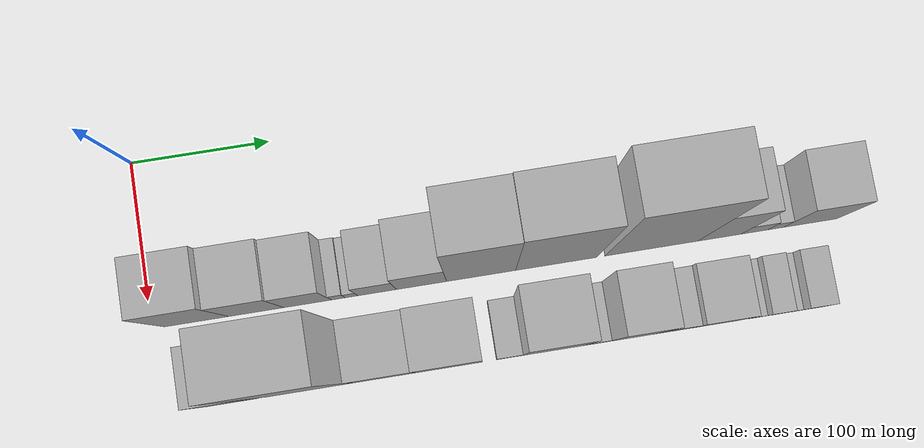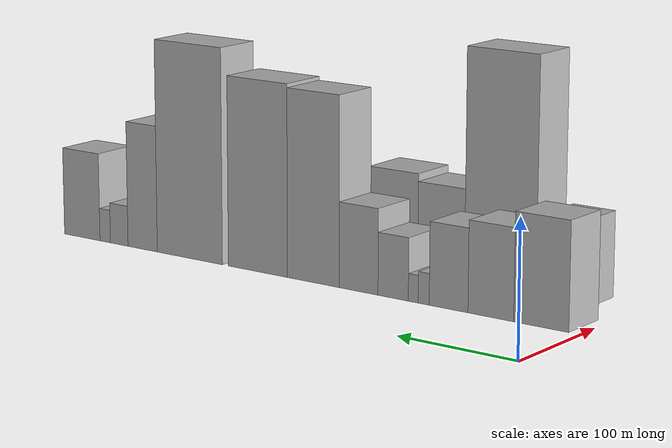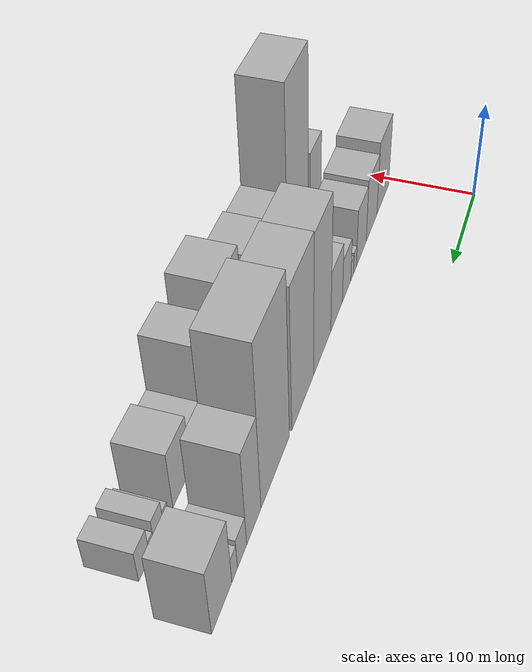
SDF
<sdf version="1.6">
 <world name="default">
  <model name="building_13">
   <static>1</static>
   <pose>100.0000 32.1512 0 0.000000 0.000000 0.000000</pose>
   <link name="link">
    <pose>0 0 40.50 0 0 0</pose>
    <collision name="collision"><geometry><box><size>40.0000 45.7778 81.0000</size></box></geometry></collision>
    <visual name="visual">
     <cast_shadows>0</cast_shadows>
     <geometry><box><size>40.0000 45.7778 81.0000</size></box></geometry>
     <material>
      <script>
       <uri>model://HANNAS_wall/materials/scripts</uri>
       <uri>model://HANNAS_wall/materials/textures</uri>
       <name>vrc/HANNAS_wall</name>
      </script>
     </material>
    </visual>
   </link>
  </model>
  <model name="building_14">
   <static>1</static>
   <pose>100.0000 74.6157 0 0.000000 0.000000 0.000000</pose>
   <link name="link">
    <pose>0 0 34.50 0 0 0</pose>
    <collision name="collision"><geometry><box><size>40.0000 39.1512 69.0000</size></box></geometry></collision>
    <visual name="visual">
     <cast_shadows>0</cast_shadows>
     <geometry><box><size>40.0000 39.1512 69.0000</size></box></geometry>
     <material>
      <script>
       <uri>model://HANNAS_wall/materials/scripts</uri>
       <uri>model://HANNAS_wall/materials/textures</uri>
       <name>vrc/HANNAS_wall</name>
      </script>
     </material>
    </visual>
   </link>
  </model>
  <model name="building_15">
   <static>1</static>
   <pose>100.0000 111.1428 0 0.000000 0.000000 0.000000</pose>
   <link name="link">
    <pose>0 0 31.50 0 0 0</pose>
    <collision name="collision"><geometry><box><size>40.0000 33.9030 63.0000</size></box></geometry></collision>
    <visual name="visual">
     <cast_shadows>0</cast_shadows>
     <geometry><box><size>40.0000 33.9030 63.0000</size></box></geometry>
     <material>
      <script>
       <uri>model://HANNAS_wall/materials/scripts</uri>
       <uri>model://HANNAS_wall/materials/textures</uri>
       <name>vrc/HANNAS_wall</name>
      </script>
     </material>
    </visual>
   </link>
  </model>
  <model name="building_16">
   <static>1</static>
   <pose>100.0000 132.9962 0 0.000000 0.000000 0.000000</pose>
   <link name="link">
    <pose>0 0 12.00 0 0 0</pose>
    <collision name="collision"><geometry><box><size>40.0000 9.8038 24.0000</size></box></geometry></collision>
    <visual name="visual">
     <cast_shadows>0</cast_shadows>
     <geometry><box><size>40.0000 9.8038 24.0000</size></box></geometry>
     <material>
      <script>
       <uri>model://HANNAS_wall/materials/scripts</uri>
       <uri>model://HANNAS_wall/materials/textures</uri>
       <name>vrc/HANNAS_wall</name>
      </script>
     </material>
    </visual>
   </link>
  </model>
  <model name="building_17">
   <static>1</static>
   <pose>100.0000 142.3267 0 0.000000 0.000000 0.000000</pose>
   <link name="link">
    <pose>0 0 10.50 0 0 0</pose>
    <collision name="collision"><geometry><box><size>40.0000 8.8571 21.0000</size></box></geometry></collision>
    <visual name="visual">
     <cast_shadows>0</cast_shadows>
     <geometry><box><size>40.0000 8.8571 21.0000</size></box></geometry>
     <material>
      <script>
       <uri>model://HANNAS_wall/materials/scripts</uri>
       <uri>model://HANNAS_wall/materials/textures</uri>
       <name>vrc/HANNAS_wall</name>
      </script>
     </material>
    </visual>
   </link>
  </model>
  <model name="building_18">
   <static>1</static>
   <pose>100.0000 160.5470 0 0.000000 0.000000 0.000000</pose>
   <link name="link">
    <pose>0 0 24.00 0 0 0</pose>
    <collision name="collision"><geometry><box><size>40.0000 27.5835 48.0000</size></box></geometry></collision>
    <visual name="visual">
     <cast_shadows>0</cast_shadows>
     <geometry><box><size>40.0000 27.5835 48.0000</size></box></geometry>
     <material>
      <script>
       <uri>model://HANNAS_wall/materials/scripts</uri>
       <uri>model://HANNAS_wall/materials/textures</uri>
       <name>vrc/HANNAS_wall</name>
      </script>
     </material>
    </visual>
   </link>
  </model>
  <model name="building_19">
   <static>1</static>
   <pose>100.0000 192.2544 0 0.000000 0.000000 0.000000</pose>
   <link name="link">
    <pose>0 0 33.00 0 0 0</pose>
    <collision name="collision"><geometry><box><size>40.0000 35.8312 66.0000</size></box></geometry></collision>
    <visual name="visual">
     <cast_shadows>0</cast_shadows>
     <geometry><box><size>40.0000 35.8312 66.0000</size></box></geometry>
     <material>
      <script>
       <uri>model://HANNAS_wall/materials/scripts</uri>
       <uri>model://HANNAS_wall/materials/textures</uri>
       <name>vrc/HANNAS_wall</name>
      </script>
     </material>
    </visual>
   </link>
  </model>
  <model name="building_20">
   <static>1</static>
   <pose>100.0000 234.7998 0 0.000000 0.000000 0.000000</pose>
   <link name="link">
    <pose>0 0 73.50 0 0 0</pose>
    <collision name="collision"><geometry><box><size>40.0000 49.2597 147.0000</size></box></geometry></collision>
    <visual name="visual">
     <cast_shadows>0</cast_shadows>
     <geometry><box><size>40.0000 49.2597 147.0000</size></box></geometry>
     <material>
      <script>
       <uri>model://HANNAS_wall/materials/scripts</uri>
       <uri>model://HANNAS_wall/materials/textures</uri>
       <name>vrc/HANNAS_wall</name>
      </script>
     </material>
    </visual>
   </link>
  </model>
  <model name="building_21">
   <static>1</static>
   <pose>100.0000 288.5176 0 0.000000 0.000000 0.000000</pose>
   <link name="link">
    <pose>0 0 75.00 0 0 0</pose>
    <collision name="collision"><geometry><box><size>40.0000 58.1758 150.0000</size></box></geometry></collision>
    <visual name="visual">
     <cast_shadows>0</cast_shadows>
     <geometry><box><size>40.0000 58.1758 150.0000</size></box></geometry>
     <material>
      <script>
       <uri>model://HANNAS_wall/materials/scripts</uri>
       <uri>model://HANNAS_wall/materials/textures</uri>
       <name>vrc/HANNAS_wall</name>
      </script>
     </material>
    </visual>
   </link>
  </model>
  <model name="building_22">
   <static>1</static>
   <pose>100.0000 357.1346 0 0.000000 0.000000 0.000000</pose>
   <link name="link">
    <pose>0 0 85.50 0 0 0</pose>
    <collision name="collision"><geometry><box><size>40.0000 67.0583 171.0000</size></box></geometry></collision>
    <visual name="visual">
     <cast_shadows>0</cast_shadows>
     <geometry><box><size>40.0000 67.0583 171.0000</size></box></geometry>
     <material>
      <script>
       <uri>model://HANNAS_wall/materials/scripts</uri>
       <uri>model://HANNAS_wall/materials/textures</uri>
       <name>vrc/HANNAS_wall</name>
      </script>
     </material>
    </visual>
   </link>
  </model>
  <model name="building_23">
   <static>1</static>
   <pose>100.0000 406.2230 0 0.000000 0.000000 0.000000</pose>
   <link name="link">
    <pose>0 0 51.00 0 0 0</pose>
    <collision name="collision"><geometry><box><size>40.0000 31.1185 102.0000</size></box></geometry></collision>
    <visual name="visual">
     <cast_shadows>0</cast_shadows>
     <geometry><box><size>40.0000 31.1185 102.0000</size></box></geometry>
     <material>
      <script>
       <uri>model://HANNAS_wall/materials/scripts</uri>
       <uri>model://HANNAS_wall/materials/textures</uri>
       <name>vrc/HANNAS_wall</name>
      </script>
     </material>
    </visual>
   </link>
  </model>
  <model name="building_24">
   <static>1</static>
   <pose>100.0000 431.2539 0 0.000000 0.000000 0.000000</pose>
   <link name="link">
    <pose>0 0 16.50 0 0 0</pose>
    <collision name="collision"><geometry><box><size>40.0000 18.9434 33.0000</size></box></geometry></collision>
    <visual name="visual">
     <cast_shadows>0</cast_shadows>
     <geometry><box><size>40.0000 18.9434 33.0000</size></box></geometry>
     <material>
      <script>
       <uri>model://HANNAS_wall/materials/scripts</uri>
       <uri>model://HANNAS_wall/materials/textures</uri>
       <name>vrc/HANNAS_wall</name>
      </script>
     </material>
    </visual>
   </link>
  </model>
  <model name="building_25">
   <static>1</static>
   <pose>100.0000 446.4016 0 0.000000 0.000000 0.000000</pose>
   <link name="link">
    <pose>0 0 13.50 0 0 0</pose>
    <collision name="collision"><geometry><box><size>40.0000 11.3519 27.0000</size></box></geometry></collision>
    <visual name="visual">
     <cast_shadows>0</cast_shadows>
     <geometry><box><size>40.0000 11.3519 27.0000</size></box></geometry>
     <material>
      <script>
       <uri>model://HANNAS_wall/materials/scripts</uri>
       <uri>model://HANNAS_wall/materials/textures</uri>
       <name>vrc/HANNAS_wall</name>
      </script>
     </material>
    </visual>
   </link>
  </model>
  <model name="building_26">
   <static>1</static>
   <pose>100.0000 471.6284 0 0.000000 0.000000 0.000000</pose>
   <link name="link">
    <pose>0 0 36.00 0 0 0</pose>
    <collision name="collision"><geometry><box><size>40.0000 39.1017 72.0000</size></box></geometry></collision>
    <visual name="visual">
     <cast_shadows>0</cast_shadows>
     <geometry><box><size>40.0000 39.1017 72.0000</size></box></geometry>
     <material>
      <script>
       <uri>model://HANNAS_wall/materials/scripts</uri>
       <uri>model://HANNAS_wall/materials/textures</uri>
       <name>vrc/HANNAS_wall</name>
      </script>
     </material>
    </visual>
   </link>
  </model>
  <model name="building_41">
   <static>1</static>
   <pose>160.0000 50.1400 0 0.000000 0.000000 0.000000</pose>
   <link name="link">
    <pose>0 0 33.00 0 0 0</pose>
    <collision name="collision"><geometry><box><size>40.0000 36.0991 66.0000</size></box></geometry></collision>
    <visual name="visual">
     <cast_shadows>0</cast_shadows>
     <geometry><box><size>40.0000 36.0991 66.0000</size></box></geometry>
     <material>
      <script>
       <uri>model://HANNAS_wall/materials/scripts</uri>
       <uri>model://HANNAS_wall/materials/textures</uri>
       <name>vrc/HANNAS_wall</name>
      </script>
     </material>
    </visual>
   </link>
  </model>
  <model name="building_42">
   <static>1</static>
   <pose>160.0000 105.8316 0 0.000000 0.000000 0.000000</pose>
   <link name="link">
    <pose>0 0 91.50 0 0 0</pose>
    <collision name="collision"><geometry><box><size>40.0000 63.2841 183.0000</size></box></geometry></collision>
    <visual name="visual">
     <cast_shadows>0</cast_shadows>
     <geometry><box><size>40.0000 63.2841 183.0000</size></box></geometry>
     <material>
      <script>
       <uri>model://HANNAS_wall/materials/scripts</uri>
       <uri>model://HANNAS_wall/materials/textures</uri>
       <name>vrc/HANNAS_wall</name>
      </script>
     </material>
    </visual>
   </link>
  </model>
  <model name="building_43">
   <static>1</static>
   <pose>160.0000 158.9096 0 0.000000 0.000000 0.000000</pose>
   <link name="link">
    <pose>0 0 37.50 0 0 0</pose>
    <collision name="collision"><geometry><box><size>40.0000 42.8721 75.0000</size></box></geometry></collision>
    <visual name="visual">
     <cast_shadows>0</cast_shadows>
     <geometry><box><size>40.0000 42.8721 75.0000</size></box></geometry>
     <material>
      <script>
       <uri>model://HANNAS_wall/materials/scripts</uri>
       <uri>model://HANNAS_wall/materials/textures</uri>
       <name>vrc/HANNAS_wall</name>
      </script>
     </material>
    </visual>
   </link>
  </model>
  <model name="building_44">
   <static>1</static>
   <pose>160.0000 203.1204 0 0.000000 0.000000 0.000000</pose>
   <link name="link">
    <pose>0 0 40.50 0 0 0</pose>
    <collision name="collision"><geometry><box><size>40.0000 45.5495 81.0000</size></box></geometry></collision>
    <visual name="visual">
     <cast_shadows>0</cast_shadows>
     <geometry><box><size>40.0000 45.5495 81.0000</size></box></geometry>
     <material>
      <script>
       <uri>model://HANNAS_wall/materials/scripts</uri>
       <uri>model://HANNAS_wall/materials/textures</uri>
       <name>vrc/HANNAS_wall</name>
      </script>
     </material>
    </visual>
   </link>
  </model>
  <model name="building_45">
   <static>1</static>
   <pose>160.0000 244.8212 0 0.000000 0.000000 0.000000</pose>
   <link name="link">
    <pose>0 0 15.00 0 0 0</pose>
    <collision name="collision"><geometry><box><size>40.0000 17.8520 30.0000</size></box></geometry></collision>
    <visual name="visual">
     <cast_shadows>0</cast_shadows>
     <geometry><box><size>40.0000 17.8520 30.0000</size></box></geometry>
     <material>
      <script>
       <uri>model://HANNAS_wall/materials/scripts</uri>
       <uri>model://HANNAS_wall/materials/textures</uri>
       <name>vrc/HANNAS_wall</name>
      </script>
     </material>
    </visual>
   </link>
  </model>
  <model name="building_46">
   <static>1</static>
   <pose>160.0000 275.0824 0 0.000000 0.000000 0.000000</pose>
   <link name="link">
    <pose>0 0 58.50 0 0 0</pose>
    <collision name="collision"><geometry><box><size>40.0000 42.6705 117.0000</size></box></geometry></collision>
    <visual name="visual">
     <cast_shadows>0</cast_shadows>
     <geometry><box><size>40.0000 42.6705 117.0000</size></box></geometry>
     <material>
      <script>
       <uri>model://HANNAS_wall/materials/scripts</uri>
       <uri>model://HANNAS_wall/materials/textures</uri>
       <name>vrc/HANNAS_wall</name>
      </script>
     </material>
    </visual>
   </link>
  </model>
  <model name="building_47">
   <static>1</static>
   <pose>160.0000 305.1480 0 0.000000 0.000000 0.000000</pose>
   <link name="link">
    <pose>0 0 16.50 0 0 0</pose>
    <collision name="collision"><geometry><box><size>40.0000 17.4606 33.0000</size></box></geometry></collision>
    <visual name="visual">
     <cast_shadows>0</cast_shadows>
     <geometry><box><size>40.0000 17.4606 33.0000</size></box></geometry>
     <material>
      <script>
       <uri>model://HANNAS_wall/materials/scripts</uri>
       <uri>model://HANNAS_wall/materials/textures</uri>
       <name>vrc/HANNAS_wall</name>
      </script>
     </material>
    </visual>
   </link>
  </model>
  <model name="building_48">
   <static>1</static>
   <pose>160.0000 330.9484 0 0.000000 0.000000 0.000000</pose>
   <link name="link">
    <pose>0 0 52.50 0 0 0</pose>
    <collision name="collision"><geometry><box><size>40.0000 34.1402 105.0000</size></box></geometry></collision>
    <visual name="visual">
     <cast_shadows>0</cast_shadows>
     <geometry><box><size>40.0000 34.1402 105.0000</size></box></geometry>
     <material>
      <script>
       <uri>model://HANNAS_wall/materials/scripts</uri>
       <uri>model://HANNAS_wall/materials/textures</uri>
       <name>vrc/HANNAS_wall</name>
      </script>
     </material>
    </visual>
   </link>
  </model>
  <model name="building_49">
   <static>1</static>
   <pose>160.0000 360.1881 0 0.000000 0.000000 0.000000</pose>
   <link name="link">
    <pose>0 0 24.00 0 0 0</pose>
    <collision name="collision"><geometry><box><size>40.0000 24.3393 48.0000</size></box></geometry></collision>
    <visual name="visual">
     <cast_shadows>0</cast_shadows>
     <geometry><box><size>40.0000 24.3393 48.0000</size></box></geometry>
     <material>
      <script>
       <uri>model://HANNAS_wall/materials/scripts</uri>
       <uri>model://HANNAS_wall/materials/textures</uri>
       <name>vrc/HANNAS_wall</name>
      </script>
     </material>
    </visual>
   </link>
  </model>
  <model name="building_50">
   <static>1</static>
   <pose>160.0000 389.9741 0 0.000000 0.000000 0.000000</pose>
   <link name="link">
    <pose>0 0 30.00 0 0 0</pose>
    <collision name="collision"><geometry><box><size>40.0000 35.2327 60.0000</size></box></geometry></collision>
    <visual name="visual">
     <cast_shadows>0</cast_shadows>
     <geometry><box><size>40.0000 35.2327 60.0000</size></box></geometry>
     <material>
      <script>
       <uri>model://HANNAS_wall/materials/scripts</uri>
       <uri>model://HANNAS_wall/materials/textures</uri>
       <name>vrc/HANNAS_wall</name>
      </script>
     </material>
    </visual>
   </link>
  </model>
  <model name="building_51">
   <static>1</static>
   <pose>160.0000 420.0163 0 0.000000 0.000000 0.000000</pose>
   <link name="link">
    <pose>0 0 9.00 0 0 0</pose>
    <collision name="collision"><geometry><box><size>40.0000 8.8517 18.0000</size></box></geometry></collision>
    <visual name="visual">
     <cast_shadows>0</cast_shadows>
     <geometry><box><size>40.0000 8.8517 18.0000</size></box></geometry>
     <material>
      <script>
       <uri>model://HANNAS_wall/materials/scripts</uri>
       <uri>model://HANNAS_wall/materials/textures</uri>
       <name>vrc/HANNAS_wall</name>
      </script>
     </material>
    </visual>
   </link>
  </model>
  <model name="building_52">
   <static>1</static>
   <pose>160.0000 432.7677 0 0.000000 0.000000 0.000000</pose>
   <link name="link">
    <pose>0 0 15.00 0 0 0</pose>
    <collision name="collision"><geometry><box><size>40.0000 16.6510 30.0000</size></box></geometry></collision>
    <visual name="visual">
     <cast_shadows>0</cast_shadows>
     <geometry><box><size>40.0000 16.6510 30.0000</size></box></geometry>
     <material>
      <script>
       <uri>model://HANNAS_wall/materials/scripts</uri>
       <uri>model://HANNAS_wall/materials/textures</uri>
       <name>vrc/HANNAS_wall</name>
      </script>
     </material>
    </visual>
   </link>
  </model>
  <model name="building_53">
   <static>1</static>
   <pose>160.0000 445.3201 0 0.000000 0.000000 0.000000</pose>
   <link name="link">
    <pose>0 0 9.00 0 0 0</pose>
    <collision name="collision"><geometry><box><size>40.0000 8.4538 18.0000</size></box></geometry></collision>
    <visual name="visual">
     <cast_shadows>0</cast_shadows>
     <geometry><box><size>40.0000 8.4538 18.0000</size></box></geometry>
     <material>
      <script>
       <uri>model://HANNAS_wall/materials/scripts</uri>
       <uri>model://HANNAS_wall/materials/textures</uri>
       <name>vrc/HANNAS_wall</name>
      </script>
     </material>
    </visual>
   </link>
  </model>
  <model name="building_54">
   <static>1</static>
   <pose>160.0000 459.3205 0 0.000000 0.000000 0.000000</pose>
   <link name="link">
    <pose>0 0 16.50 0 0 0</pose>
    <collision name="collision"><geometry><box><size>40.0000 19.5470 33.0000</size></box></geometry></collision>
    <visual name="visual">
     <cast_shadows>0</cast_shadows>
     <geometry><box><size>40.0000 19.5470 33.0000</size></box></geometry>
     <material>
      <script>
       <uri>model://HANNAS_wall/materials/scripts</uri>
       <uri>model://HANNAS_wall/materials/textures</uri>
       <name>vrc/HANNAS_wall</name>
      </script>
     </material>
    </visual>
   </link>
  </model>
 </world>
</sdf>
